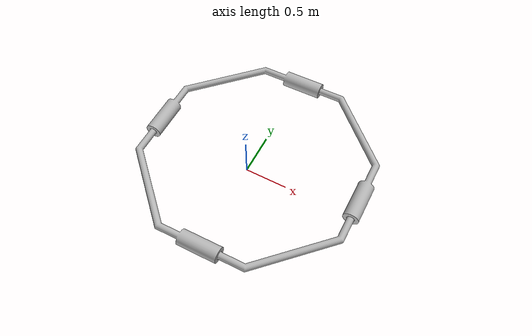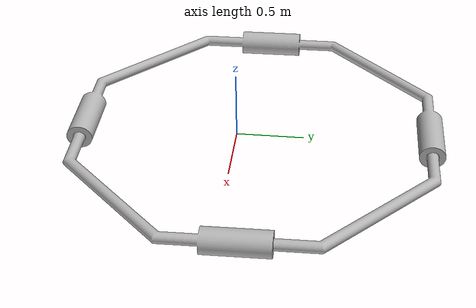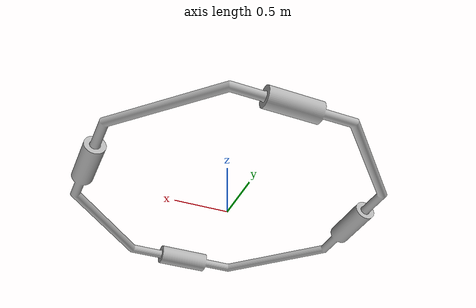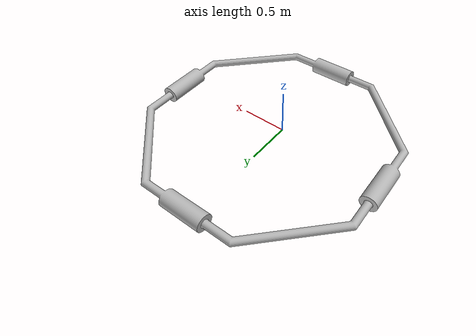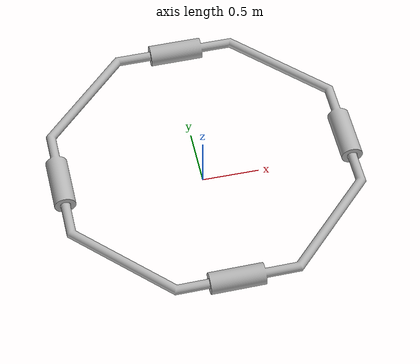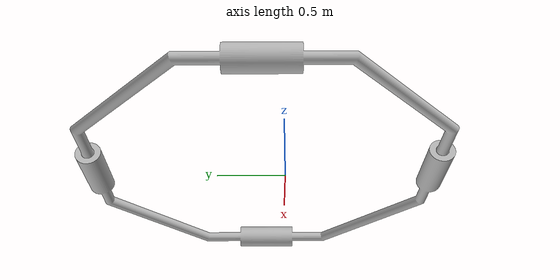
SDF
<?xml version="1.0"?>
<sdf version="1.5">
  <model name="octogon">
    <static>true</static>
    <link name="octogon">
      <collision name='octogoncol'>
        <pose>0 0 0 1.57 0 0</pose>
        <geometry>
          <mesh>
            <uri>file://octogon/octogon.dae</uri>
          </mesh>
        </geometry>
      </collision>
      <visual name="octogonvis">
        <pose>0 0 0 1.57 0 0</pose>
        <geometry>
          <mesh>
            <uri>file://octogon/octogon.dae</uri>
          </mesh>
        </geometry>
      </visual>
    </link>
  </model>
</sdf>
